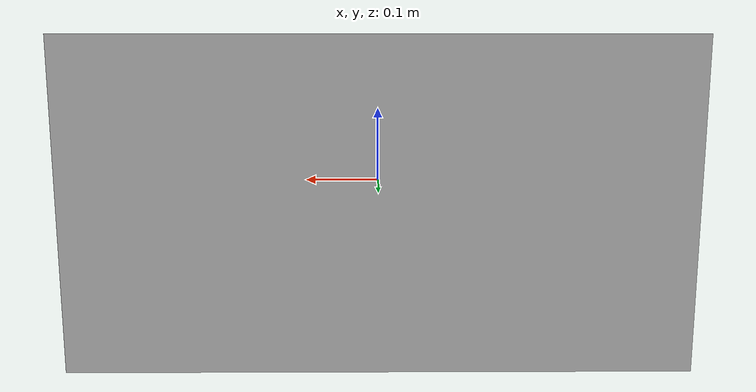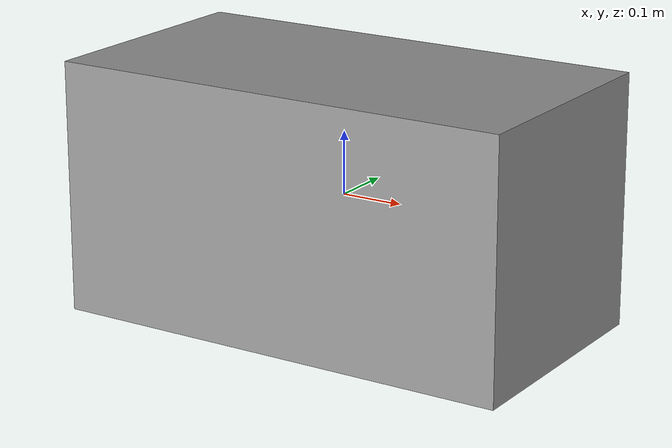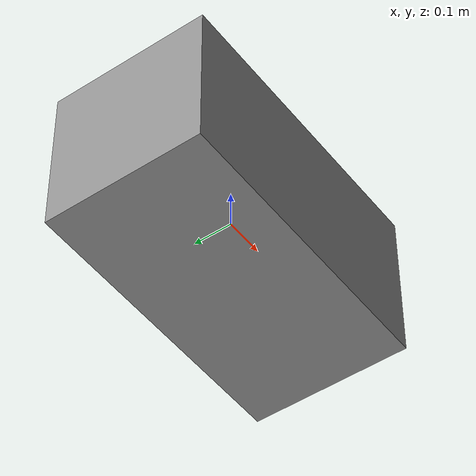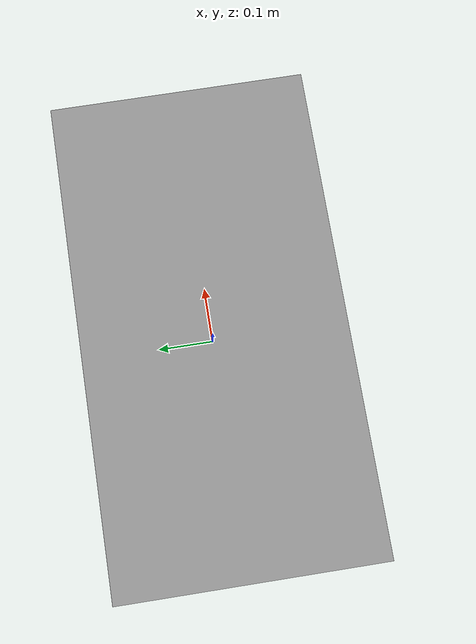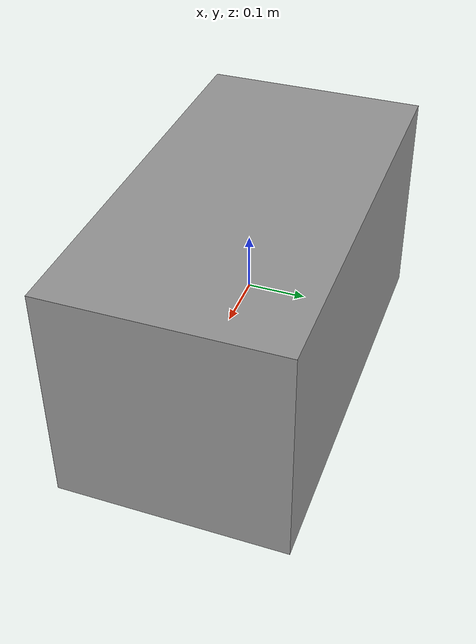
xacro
<robot name="grey_block" xmlns:xacro="http://ros.org/wiki/xacro">

	<xacro:property name="X_PI" value="3.1415926535897931" />
	<xacro:property name="X_id" value="grey_block" />
	<link name="${X_id}/base_footprint"/>
	<joint name="base_joint" type="fixed">
		<origin xyz="0 0 0" rpy="0 0 0" />
		<parent link="${X_id}/base_footprint"/>
		<child link="${X_id}/base_link" />
	</joint>

	<link name="${X_id}/base_link">
		<visual>
			<geometry>
            	<box size="0.75 0.4 0.4"/>
			</geometry>
			<origin xyz="0 0 0" rpy="0 0 0"/>
		</visual>
		<collision>
			<geometry>
            	<box size="0.75 0.4 0.4"/>
			</geometry>
			<origin xyz="0 0 0" rpy="0 0 0"/>
		</collision>
		<inertial>
			<mass value="1"/> <!-- 2.4/2.6 kg for small/big battery pack -->
			<origin xyz="0 0 0"/>
			<inertia ixx="1" ixy="0.0" ixz="0.0" iyy="1" iyz="0.0" izz="1" />
		</inertial>
	</link>

	<gazebo reference="${X_id}/base_link">
		<material>Gazebo/Grey</material>
	</gazebo>

</robot>
